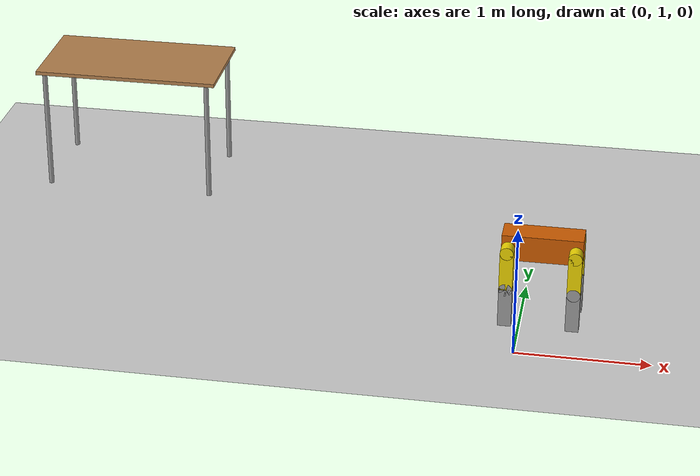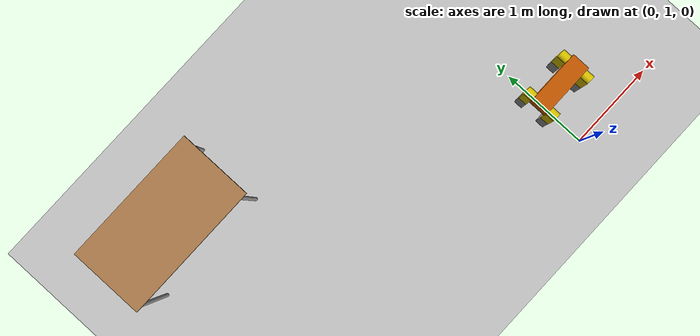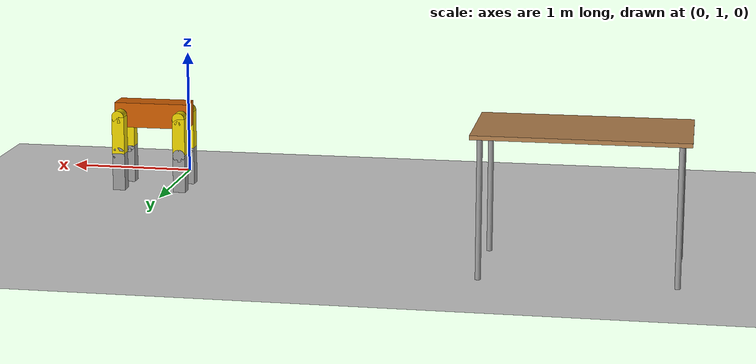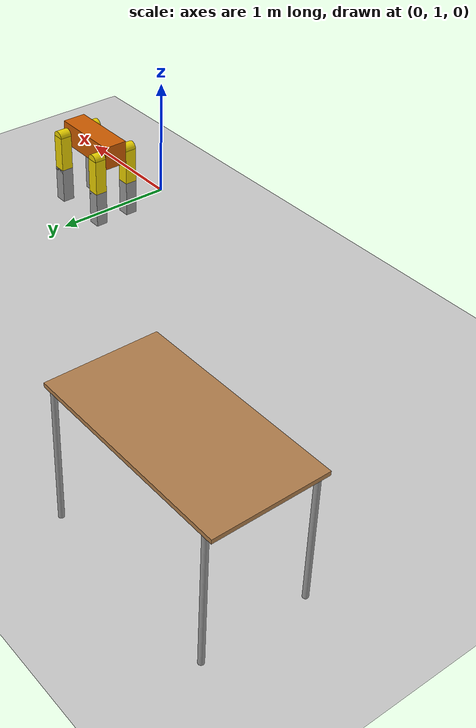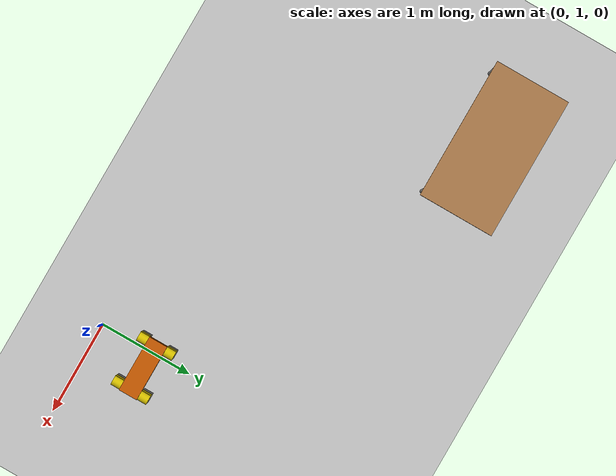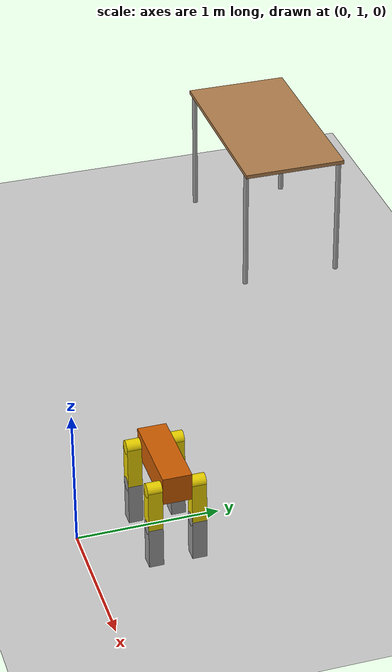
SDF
<sdf version="1.6">
 <world name="default">
  <model name="ground_plane">
   <static>1</static>
   <link name="link">
    <collision name="collision">
     <geometry><plane><normal>0 0 1</normal><size>100 100</size></plane></geometry>
     <surface>
      <contact><collide_bitmask>65535</collide_bitmask></contact>
      <friction><ode><mu>100</mu><mu2>50</mu2></ode></friction>
     </surface>
    </collision>
    <visual name="visual">
     <cast_shadows>0</cast_shadows>
     <geometry><plane><normal>0 0 1</normal><size>100 100</size></plane></geometry>
     <material>
      <script><uri>file://media/materials/scripts/gazebo.material</uri><name>Gazebo/Grey</name></script>
     </material>
    </visual>
   </link>
  </model>
  <model name="dog_robot">
   <link name="link_0">
    <inertial>
     <mass>28.2</mass>
     <inertia><ixx>0.188</ixx><ixy>0</ixy><ixz>0</ixz><iyy>0.94</iyy><iyz>0</iyz><izz>0.94</izz></inertia>
    </inertial>
    <pose>1.24337 -0.641078 0.247843 0 -0 0</pose>
    <visual name="visual">
     <geometry><box><size>0.6 0.2 0.2</size></box></geometry>
     <material>
      <lighting>1</lighting>
      <script><uri>file://media/materials/scripts/gazebo.material</uri><name>Gazebo/Grey</name></script>
      <shader type="pixel"><normal_map>__default__</normal_map></shader>
      <ambient>0.808 0.361 0 1</ambient>
      <diffuse>0.808 0.361 0 1</diffuse>
      <specular>0.808 0.361 0 1</specular>
      <emissive>0 0 0 1</emissive>
     </material>
    </visual>
    <collision name="collision">
     <geometry><box><size>0.6 0.2 0.2</size></box></geometry>
     <surface>
      <friction>
       <ode><mu>1</mu><mu2>1</mu2><fdir1>0 0 0</fdir1><slip1>0</slip1><slip2>0</slip2></ode>
       <torsional>
        <coefficient>1</coefficient>
        <patch_radius>0</patch_radius>
        <surface_radius>0</surface_radius>
        <use_patch_radius>1</use_patch_radius>
        <ode><slip>0</slip></ode>
       </torsional>
      </friction>
      <bounce><restitution_coefficient>0</restitution_coefficient><threshold>1e+06</threshold></bounce>
      <contact>
       <collide_without_contact>0</collide_without_contact>
       <collide_without_contact_bitmask>1</collide_without_contact_bitmask>
       <collide_bitmask>1</collide_bitmask>
       <ode>
        <soft_cfm>0</soft_cfm>
        <soft_erp>0.2</soft_erp>
        <kp>1e+13</kp>
        <kd>1</kd>
        <max_vel>0.01</max_vel>
        <min_depth>0</min_depth>
       </ode>
       <bullet>
        <split_impulse>1</split_impulse>
        <split_impulse_penetration_threshold>-0.01</split_impulse_penetration_threshold>
        <soft_cfm>0</soft_cfm>
        <soft_erp>0.2</soft_erp>
        <kp>1e+13</kp>
        <kd>1</kd>
       </bullet>
      </contact>
     </surface>
    </collision>
   </link>
   <link name="link_1">
    <inertial>
     <mass>0.922843</mass>
     <inertia>
      <ixx>0.00134581</ixx>
      <ixy>0</ixy>
      <ixz>0</ixz>
      <iyy>0.00134581</iyy>
      <iyz>0</iyz>
      <izz>0.00115355</izz>
     </inertia>
    </inertial>
    <pose>1.49337 -0.791078 0.247843 1.5707 -0 0</pose>
    <visual name="visual">
     <geometry><cylinder><radius>0.05</radius><length>0.1</length></cylinder></geometry>
     <material>
      <lighting>1</lighting>
      <script><uri>file://media/materials/scripts/gazebo.material</uri><name>Gazebo/Grey</name></script>
      <shader type="pixel"><normal_map>__default__</normal_map></shader>
      <ambient>0.929 0.831 0 1</ambient>
      <diffuse>0.929 0.831 0 1</diffuse>
      <specular>0.929 0.831 0 1</specular>
      <emissive>0 0 0 1</emissive>
     </material>
    </visual>
    <collision name="collision">
     <geometry><cylinder><radius>0.05</radius><length>0.1</length></cylinder></geometry>
     <surface>
      <friction>
       <ode><mu>1</mu><mu2>1</mu2><fdir1>0 0 0</fdir1><slip1>0</slip1><slip2>0</slip2></ode>
       <torsional>
        <coefficient>1</coefficient>
        <patch_radius>0</patch_radius>
        <surface_radius>0</surface_radius>
        <use_patch_radius>1</use_patch_radius>
        <ode><slip>0</slip></ode>
       </torsional>
      </friction>
      <bounce><restitution_coefficient>0</restitution_coefficient><threshold>1e+06</threshold></bounce>
      <contact>
       <collide_without_contact>0</collide_without_contact>
       <collide_without_contact_bitmask>1</collide_without_contact_bitmask>
       <collide_bitmask>1</collide_bitmask>
       <ode>
        <soft_cfm>0</soft_cfm>
        <soft_erp>0.2</soft_erp>
        <kp>1e+13</kp>
        <kd>1</kd>
        <max_vel>0.01</max_vel>
        <min_depth>0</min_depth>
       </ode>
       <bullet>
        <split_impulse>1</split_impulse>
        <split_impulse_penetration_threshold>-0.01</split_impulse_penetration_threshold>
        <soft_cfm>0</soft_cfm>
        <soft_erp>0.2</soft_erp>
        <kp>1e+13</kp>
        <kd>1</kd>
       </bullet>
      </contact>
     </surface>
    </collision>
   </link>
   <link name="link_1_clone">
    <inertial>
     <mass>0.922843</mass>
     <inertia>
      <ixx>0.00134581</ixx>
      <ixy>0</ixy>
      <ixz>0</ixz>
      <iyy>0.00134581</iyy>
      <iyz>0</iyz>
      <izz>0.00115355</izz>
     </inertia>
    </inertial>
    <pose>0.993372 -0.491078 0.247843 1.5707 -0 0</pose>
    <visual name="visual">
     <geometry><cylinder><radius>0.05</radius><length>0.1</length></cylinder></geometry>
     <material>
      <lighting>1</lighting>
      <script><uri>file://media/materials/scripts/gazebo.material</uri><name>Gazebo/Grey</name></script>
      <shader type="pixel"><normal_map>__default__</normal_map></shader>
      <ambient>0.929 0.831 0 1</ambient>
      <diffuse>0.929 0.831 0 1</diffuse>
      <specular>0.929 0.831 0 1</specular>
      <emissive>0 0 0 1</emissive>
     </material>
    </visual>
    <collision name="collision">
     <geometry><cylinder><radius>0.05</radius><length>0.1</length></cylinder></geometry>
     <surface>
      <friction>
       <ode><mu>1</mu><mu2>1</mu2><fdir1>0 0 0</fdir1><slip1>0</slip1><slip2>0</slip2></ode>
       <torsional>
        <coefficient>1</coefficient>
        <patch_radius>0</patch_radius>
        <surface_radius>0</surface_radius>
        <use_patch_radius>1</use_patch_radius>
        <ode><slip>0</slip></ode>
       </torsional>
      </friction>
      <bounce><restitution_coefficient>0</restitution_coefficient><threshold>1e+06</threshold></bounce>
      <contact>
       <collide_without_contact>0</collide_without_contact>
       <collide_without_contact_bitmask>1</collide_without_contact_bitmask>
       <collide_bitmask>1</collide_bitmask>
       <ode>
        <soft_cfm>0</soft_cfm>
        <soft_erp>0.2</soft_erp>
        <kp>1e+13</kp>
        <kd>1</kd>
        <max_vel>0.01</max_vel>
        <min_depth>0</min_depth>
       </ode>
       <bullet>
        <split_impulse>1</split_impulse>
        <split_impulse_penetration_threshold>-0.01</split_impulse_penetration_threshold>
        <soft_cfm>0</soft_cfm>
        <soft_erp>0.2</soft_erp>
        <kp>1e+13</kp>
        <kd>1</kd>
       </bullet>
      </contact>
     </surface>
    </collision>
   </link>
   <link name="link_1_clone_0">
    <inertial>
     <mass>0.922843</mass>
     <inertia>
      <ixx>0.00134581</ixx>
      <ixy>0</ixy>
      <ixz>0</ixz>
      <iyy>0.00134581</iyy>
      <iyz>0</iyz>
      <izz>0.00115355</izz>
     </inertia>
    </inertial>
    <pose>0.993372 -0.791078 0.247843 1.5707 -0 0</pose>
    <visual name="visual">
     <geometry><cylinder><radius>0.05</radius><length>0.1</length></cylinder></geometry>
     <material>
      <lighting>1</lighting>
      <script><uri>file://media/materials/scripts/gazebo.material</uri><name>Gazebo/Grey</name></script>
      <shader type="pixel"><normal_map>__default__</normal_map></shader>
      <ambient>0.929 0.831 0 1</ambient>
      <diffuse>0.929 0.831 0 1</diffuse>
      <specular>0.929 0.831 0 1</specular>
      <emissive>0 0 0 1</emissive>
     </material>
    </visual>
    <collision name="collision">
     <geometry><cylinder><radius>0.05</radius><length>0.1</length></cylinder></geometry>
     <surface>
      <friction>
       <ode><mu>1</mu><mu2>1</mu2><fdir1>0 0 0</fdir1><slip1>0</slip1><slip2>0</slip2></ode>
       <torsional>
        <coefficient>1</coefficient>
        <patch_radius>0</patch_radius>
        <surface_radius>0</surface_radius>
        <use_patch_radius>1</use_patch_radius>
        <ode><slip>0</slip></ode>
       </torsional>
      </friction>
      <bounce><restitution_coefficient>0</restitution_coefficient><threshold>1e+06</threshold></bounce>
      <contact>
       <collide_without_contact>0</collide_without_contact>
       <collide_without_contact_bitmask>1</collide_without_contact_bitmask>
       <collide_bitmask>1</collide_bitmask>
       <ode>
        <soft_cfm>0</soft_cfm>
        <soft_erp>0.2</soft_erp>
        <kp>1e+13</kp>
        <kd>1</kd>
        <max_vel>0.01</max_vel>
        <min_depth>0</min_depth>
       </ode>
       <bullet>
        <split_impulse>1</split_impulse>
        <split_impulse_penetration_threshold>-0.01</split_impulse_penetration_threshold>
        <soft_cfm>0</soft_cfm>
        <soft_erp>0.2</soft_erp>
        <kp>1e+13</kp>
        <kd>1</kd>
       </bullet>
      </contact>
     </surface>
    </collision>
   </link>
   <link name="link_1_clone_1">
    <inertial>
     <mass>0.922843</mass>
     <inertia>
      <ixx>0.00134581</ixx>
      <ixy>0</ixy>
      <ixz>0</ixz>
      <iyy>0.00134581</iyy>
      <iyz>0</iyz>
      <izz>0.00115355</izz>
     </inertia>
    </inertial>
    <pose>1.49337 -0.491078 0.247843 1.5707 -0 0</pose>
    <visual name="visual">
     <geometry><cylinder><radius>0.05</radius><length>0.1</length></cylinder></geometry>
     <material>
      <lighting>1</lighting>
      <script><uri>file://media/materials/scripts/gazebo.material</uri><name>Gazebo/Grey</name></script>
      <shader type="pixel"><normal_map>__default__</normal_map></shader>
      <ambient>0.929 0.831 0 1</ambient>
      <diffuse>0.929 0.831 0 1</diffuse>
      <specular>0.929 0.831 0 1</specular>
      <emissive>0 0 0 1</emissive>
     </material>
    </visual>
    <collision name="collision">
     <geometry><cylinder><radius>0.05</radius><length>0.1</length></cylinder></geometry>
     <surface>
      <friction>
       <ode><mu>1</mu><mu2>1</mu2><fdir1>0 0 0</fdir1><slip1>0</slip1><slip2>0</slip2></ode>
       <torsional>
        <coefficient>1</coefficient>
        <patch_radius>0</patch_radius>
        <surface_radius>0</surface_radius>
        <use_patch_radius>1</use_patch_radius>
        <ode><slip>0</slip></ode>
       </torsional>
      </friction>
      <bounce><restitution_coefficient>0</restitution_coefficient><threshold>1e+06</threshold></bounce>
      <contact>
       <collide_without_contact>0</collide_without_contact>
       <collide_without_contact_bitmask>1</collide_without_contact_bitmask>
       <collide_bitmask>1</collide_bitmask>
       <ode>
        <soft_cfm>0</soft_cfm>
        <soft_erp>0.2</soft_erp>
        <kp>1e+13</kp>
        <kd>1</kd>
        <max_vel>0.01</max_vel>
        <min_depth>0</min_depth>
       </ode>
       <bullet>
        <split_impulse>1</split_impulse>
        <split_impulse_penetration_threshold>-0.01</split_impulse_penetration_threshold>
        <soft_cfm>0</soft_cfm>
        <soft_erp>0.2</soft_erp>
        <kp>1e+13</kp>
        <kd>1</kd>
       </bullet>
      </contact>
     </surface>
    </collision>
   </link>
   <link name="link_2">
    <inertial>
     <mass>3.525</mass>
     <inertia>
      <ixx>0.029375</ixx>
      <ixy>0</ixy>
      <ixz>0</ixz>
      <iyy>0.005875</iyy>
      <iyz>0</iyz>
      <izz>0.029375</izz>
     </inertia>
    </inertial>
    <pose>1.49337 -0.791092 0.097844 1.5707 -0 0</pose>
    <visual name="visual">
     <geometry><box><size>0.1 0.3 0.1</size></box></geometry>
     <material>
      <lighting>1</lighting>
      <script><uri>file://media/materials/scripts/gazebo.material</uri><name>Gazebo/Grey</name></script>
      <shader type="pixel"><normal_map>__default__</normal_map></shader>
      <ambient>0.929 0.831 0 1</ambient>
      <diffuse>0.929 0.831 0 1</diffuse>
      <specular>0.929 0.831 0 1</specular>
      <emissive>0 0 0 1</emissive>
     </material>
    </visual>
    <collision name="collision">
     <geometry><box><size>0.1 0.3 0.1</size></box></geometry>
     <surface>
      <friction>
       <ode><mu>1</mu><mu2>1</mu2><fdir1>0 0 0</fdir1><slip1>0</slip1><slip2>0</slip2></ode>
       <torsional>
        <coefficient>1</coefficient>
        <patch_radius>0</patch_radius>
        <surface_radius>0</surface_radius>
        <use_patch_radius>1</use_patch_radius>
        <ode><slip>0</slip></ode>
       </torsional>
      </friction>
      <bounce><restitution_coefficient>0</restitution_coefficient><threshold>1e+06</threshold></bounce>
      <contact>
       <collide_without_contact>0</collide_without_contact>
       <collide_without_contact_bitmask>1</collide_without_contact_bitmask>
       <collide_bitmask>1</collide_bitmask>
       <ode>
        <soft_cfm>0</soft_cfm>
        <soft_erp>0.2</soft_erp>
        <kp>1e+13</kp>
        <kd>1</kd>
        <max_vel>0.01</max_vel>
        <min_depth>0</min_depth>
       </ode>
       <bullet>
        <split_impulse>1</split_impulse>
        <split_impulse_penetration_threshold>-0.01</split_impulse_penetration_threshold>
        <soft_cfm>0</soft_cfm>
        <soft_erp>0.2</soft_erp>
        <kp>1e+13</kp>
        <kd>1</kd>
       </bullet>
      </contact>
     </surface>
    </collision>
   </link>
   <link name="link_2_clone">
    <inertial>
     <mass>3.525</mass>
     <inertia>
      <ixx>0.029375</ixx>
      <ixy>0</ixy>
      <ixz>0</ixz>
      <iyy>0.005875</iyy>
      <iyz>0</iyz>
      <izz>0.029375</izz>
     </inertia>
    </inertial>
    <pose>0.993372 -0.491092 0.097844 1.5707 -0 0</pose>
    <visual name="visual">
     <geometry><box><size>0.1 0.3 0.1</size></box></geometry>
     <material>
      <lighting>1</lighting>
      <script><uri>file://media/materials/scripts/gazebo.material</uri><name>Gazebo/Grey</name></script>
      <shader type="pixel"><normal_map>__default__</normal_map></shader>
      <ambient>0.929 0.831 0 1</ambient>
      <diffuse>0.929 0.831 0 1</diffuse>
      <specular>0.929 0.831 0 1</specular>
      <emissive>0 0 0 1</emissive>
     </material>
    </visual>
    <collision name="collision">
     <geometry><box><size>0.1 0.3 0.1</size></box></geometry>
     <surface>
      <friction>
       <ode><mu>1</mu><mu2>1</mu2><fdir1>0 0 0</fdir1><slip1>0</slip1><slip2>0</slip2></ode>
       <torsional>
        <coefficient>1</coefficient>
        <patch_radius>0</patch_radius>
        <surface_radius>0</surface_radius>
        <use_patch_radius>1</use_patch_radius>
        <ode><slip>0</slip></ode>
       </torsional>
      </friction>
      <bounce><restitution_coefficient>0</restitution_coefficient><threshold>1e+06</threshold></bounce>
      <contact>
       <collide_without_contact>0</collide_without_contact>
       <collide_without_contact_bitmask>1</collide_without_contact_bitmask>
       <collide_bitmask>1</collide_bitmask>
       <ode>
        <soft_cfm>0</soft_cfm>
        <soft_erp>0.2</soft_erp>
        <kp>1e+13</kp>
        <kd>1</kd>
        <max_vel>0.01</max_vel>
        <min_depth>0</min_depth>
       </ode>
       <bullet>
        <split_impulse>1</split_impulse>
        <split_impulse_penetration_threshold>-0.01</split_impulse_penetration_threshold>
        <soft_cfm>0</soft_cfm>
        <soft_erp>0.2</soft_erp>
        <kp>1e+13</kp>
        <kd>1</kd>
       </bullet>
      </contact>
     </surface>
    </collision>
   </link>
   <link name="link_2_clone_0">
    <inertial>
     <mass>3.525</mass>
     <inertia>
      <ixx>0.029375</ixx>
      <ixy>0</ixy>
      <ixz>0</ixz>
      <iyy>0.005875</iyy>
      <iyz>0</iyz>
      <izz>0.029375</izz>
     </inertia>
    </inertial>
    <pose>1.49337 -0.491092 0.097844 1.5707 -0 0</pose>
    <visual name="visual">
     <geometry><box><size>0.1 0.3 0.1</size></box></geometry>
     <material>
      <lighting>1</lighting>
      <script><uri>file://media/materials/scripts/gazebo.material</uri><name>Gazebo/Grey</name></script>
      <shader type="pixel"><normal_map>__default__</normal_map></shader>
      <ambient>0.929 0.831 0 1</ambient>
      <diffuse>0.929 0.831 0 1</diffuse>
      <specular>0.929 0.831 0 1</specular>
      <emissive>0 0 0 1</emissive>
     </material>
    </visual>
    <collision name="collision">
     <geometry><box><size>0.1 0.3 0.1</size></box></geometry>
     <surface>
      <friction>
       <ode><mu>1</mu><mu2>1</mu2><fdir1>0 0 0</fdir1><slip1>0</slip1><slip2>0</slip2></ode>
       <torsional>
        <coefficient>1</coefficient>
        <patch_radius>0</patch_radius>
        <surface_radius>0</surface_radius>
        <use_patch_radius>1</use_patch_radius>
        <ode><slip>0</slip></ode>
       </torsional>
      </friction>
      <bounce><restitution_coefficient>0</restitution_coefficient><threshold>1e+06</threshold></bounce>
      <contact>
       <collide_without_contact>0</collide_without_contact>
       <collide_without_contact_bitmask>1</collide_without_contact_bitmask>
       <collide_bitmask>1</collide_bitmask>
       <ode>
        <soft_cfm>0</soft_cfm>
        <soft_erp>0.2</soft_erp>
        <kp>1e+13</kp>
        <kd>1</kd>
        <max_vel>0.01</max_vel>
        <min_depth>0</min_depth>
       </ode>
       <bullet>
        <split_impulse>1</split_impulse>
        <split_impulse_penetration_threshold>-0.01</split_impulse_penetration_threshold>
        <soft_cfm>0</soft_cfm>
        <soft_erp>0.2</soft_erp>
        <kp>1e+13</kp>
        <kd>1</kd>
       </bullet>
      </contact>
     </surface>
    </collision>
   </link>
   <link name="link_2_clone_1">
    <inertial>
     <mass>3.525</mass>
     <inertia>
      <ixx>0.029375</ixx>
      <ixy>0</ixy>
      <ixz>0</ixz>
      <iyy>0.005875</iyy>
      <iyz>0</iyz>
      <izz>0.029375</izz>
     </inertia>
    </inertial>
    <pose>0.993372 -0.791092 0.097844 1.5707 -0 0</pose>
    <visual name="visual">
     <geometry><box><size>0.1 0.3 0.1</size></box></geometry>
     <material>
      <lighting>1</lighting>
      <script><uri>file://media/materials/scripts/gazebo.material</uri><name>Gazebo/Grey</name></script>
      <shader type="pixel"><normal_map>__default__</normal_map></shader>
      <ambient>0.929 0.831 0 1</ambient>
      <diffuse>0.929 0.831 0 1</diffuse>
      <specular>0.929 0.831 0 1</specular>
      <emissive>0 0 0 1</emissive>
     </material>
    </visual>
    <collision name="collision">
     <geometry><box><size>0.1 0.3 0.1</size></box></geometry>
     <surface>
      <friction>
       <ode><mu>1</mu><mu2>1</mu2><fdir1>0 0 0</fdir1><slip1>0</slip1><slip2>0</slip2></ode>
       <torsional>
        <coefficient>1</coefficient>
        <patch_radius>0</patch_radius>
        <surface_radius>0</surface_radius>
        <use_patch_radius>1</use_patch_radius>
        <ode><slip>0</slip></ode>
       </torsional>
      </friction>
      <bounce><restitution_coefficient>0</restitution_coefficient><threshold>1e+06</threshold></bounce>
      <contact>
       <collide_without_contact>0</collide_without_contact>
       <collide_without_contact_bitmask>1</collide_without_contact_bitmask>
       <collide_bitmask>1</collide_bitmask>
       <ode>
        <soft_cfm>0</soft_cfm>
        <soft_erp>0.2</soft_erp>
        <kp>1e+13</kp>
        <kd>1</kd>
        <max_vel>0.01</max_vel>
        <min_depth>0</min_depth>
       </ode>
       <bullet>
        <split_impulse>1</split_impulse>
        <split_impulse_penetration_threshold>-0.01</split_impulse_penetration_threshold>
        <soft_cfm>0</soft_cfm>
        <soft_erp>0.2</soft_erp>
        <kp>1e+13</kp>
        <kd>1</kd>
       </bullet>
      </contact>
     </surface>
    </collision>
   </link>
   <link name="link_2_clone_2">
    <inertial>
     <mass>3.525</mass>
     <inertia>
      <ixx>0.029375</ixx>
      <ixy>0</ixy>
      <ixz>0</ixz>
      <iyy>0.005875</iyy>
      <iyz>0</iyz>
      <izz>0.029375</izz>
     </inertia>
    </inertial>
    <pose>1.49337 -0.791121 -0.202156 1.5707 -0 0</pose>
    <visual name="visual">
     <geometry><box><size>0.1 0.3 0.1</size></box></geometry>
     <material>
      <lighting>1</lighting>
      <script><uri>file://media/materials/scripts/gazebo.material</uri><name>Gazebo/Grey</name></script>
      <shader type="pixel"><normal_map>__default__</normal_map></shader>
      <ambient>0.3 0.3 0.3 1</ambient>
      <diffuse>0.7 0.7 0.7 1</diffuse>
      <specular>0.01 0.01 0.01 1</specular>
      <emissive>0 0 0 1</emissive>
     </material>
    </visual>
    <collision name="collision">
     <geometry><box><size>0.1 0.3 0.1</size></box></geometry>
     <surface>
      <friction>
       <ode><mu>1</mu><mu2>1</mu2><fdir1>0 0 0</fdir1><slip1>0</slip1><slip2>0</slip2></ode>
       <torsional>
        <coefficient>1</coefficient>
        <patch_radius>0</patch_radius>
        <surface_radius>0</surface_radius>
        <use_patch_radius>1</use_patch_radius>
        <ode><slip>0</slip></ode>
       </torsional>
      </friction>
      <bounce><restitution_coefficient>0</restitution_coefficient><threshold>1e+06</threshold></bounce>
      <contact>
       <collide_without_contact>0</collide_without_contact>
       <collide_without_contact_bitmask>1</collide_without_contact_bitmask>
       <collide_bitmask>1</collide_bitmask>
       <ode>
        <soft_cfm>0</soft_cfm>
        <soft_erp>0.2</soft_erp>
        <kp>1e+13</kp>
        <kd>1</kd>
        <max_vel>0.01</max_vel>
        <min_depth>0</min_depth>
       </ode>
       <bullet>
        <split_impulse>1</split_impulse>
        <split_impulse_penetration_threshold>-0.01</split_impulse_penetration_threshold>
        <soft_cfm>0</soft_cfm>
        <soft_erp>0.2</soft_erp>
        <kp>1e+13</kp>
        <kd>1</kd>
       </bullet>
      </contact>
     </surface>
    </collision>
   </link>
   <link name="link_2_clone_3">
    <inertial>
     <mass>3.525</mass>
     <inertia>
      <ixx>0.029375</ixx>
      <ixy>0</ixy>
      <ixz>0</ixz>
      <iyy>0.005875</iyy>
      <iyz>0</iyz>
      <izz>0.029375</izz>
     </inertia>
    </inertial>
    <pose>0.993372 -0.491121 -0.202156 1.5707 -0 0</pose>
    <visual name="visual">
     <geometry><box><size>0.1 0.3 0.1</size></box></geometry>
     <material>
      <lighting>1</lighting>
      <script><uri>file://media/materials/scripts/gazebo.material</uri><name>Gazebo/Grey</name></script>
      <shader type="pixel"><normal_map>__default__</normal_map></shader>
      <ambient>0.3 0.3 0.3 1</ambient>
      <diffuse>0.7 0.7 0.7 1</diffuse>
      <specular>0.01 0.01 0.01 1</specular>
      <emissive>0 0 0 1</emissive>
     </material>
    </visual>
    <collision name="collision">
     <geometry><box><size>0.1 0.3 0.1</size></box></geometry>
     <surface>
      <friction>
       <ode><mu>1</mu><mu2>1</mu2><fdir1>0 0 0</fdir1><slip1>0</slip1><slip2>0</slip2></ode>
       <torsional>
        <coefficient>1</coefficient>
        <patch_radius>0</patch_radius>
        <surface_radius>0</surface_radius>
        <use_patch_radius>1</use_patch_radius>
        <ode><slip>0</slip></ode>
       </torsional>
      </friction>
      <bounce><restitution_coefficient>0</restitution_coefficient><threshold>1e+06</threshold></bounce>
      <contact>
       <collide_without_contact>0</collide_without_contact>
       <collide_without_contact_bitmask>1</collide_without_contact_bitmask>
       <collide_bitmask>1</collide_bitmask>
       <ode>
        <soft_cfm>0</soft_cfm>
        <soft_erp>0.2</soft_erp>
        <kp>1e+13</kp>
        <kd>1</kd>
        <max_vel>0.01</max_vel>
        <min_depth>0</min_depth>
       </ode>
       <bullet>
        <split_impulse>1</split_impulse>
        <split_impulse_penetration_threshold>-0.01</split_impulse_penetration_threshold>
        <soft_cfm>0</soft_cfm>
        <soft_erp>0.2</soft_erp>
        <kp>1e+13</kp>
        <kd>1</kd>
       </bullet>
      </contact>
     </surface>
    </collision>
   </link>
   <link name="link_2_clone_4">
    <inertial>
     <mass>3.525</mass>
     <inertia>
      <ixx>0.029375</ixx>
      <ixy>0</ixy>
      <ixz>0</ixz>
      <iyy>0.005875</iyy>
      <iyz>0</iyz>
      <izz>0.029375</izz>
     </inertia>
    </inertial>
    <pose>1.49337 -0.491121 -0.202156 1.5707 -0 0</pose>
    <visual name="visual">
     <geometry><box><size>0.1 0.3 0.1</size></box></geometry>
     <material>
      <lighting>1</lighting>
      <script><uri>file://media/materials/scripts/gazebo.material</uri><name>Gazebo/Grey</name></script>
      <shader type="pixel"><normal_map>__default__</normal_map></shader>
      <ambient>0.3 0.3 0.3 1</ambient>
      <diffuse>0.7 0.7 0.7 1</diffuse>
      <specular>0.01 0.01 0.01 1</specular>
      <emissive>0 0 0 1</emissive>
     </material>
    </visual>
    <collision name="collision">
     <geometry><box><size>0.1 0.3 0.1</size></box></geometry>
     <surface>
      <friction>
       <ode><mu>1</mu><mu2>1</mu2><fdir1>0 0 0</fdir1><slip1>0</slip1><slip2>0</slip2></ode>
       <torsional>
        <coefficient>1</coefficient>
        <patch_radius>0</patch_radius>
        <surface_radius>0</surface_radius>
        <use_patch_radius>1</use_patch_radius>
        <ode><slip>0</slip></ode>
       </torsional>
      </friction>
      <bounce><restitution_coefficient>0</restitution_coefficient><threshold>1e+06</threshold></bounce>
      <contact>
       <collide_without_contact>0</collide_without_contact>
       <collide_without_contact_bitmask>1</collide_without_contact_bitmask>
       <collide_bitmask>1</collide_bitmask>
       <ode>
        <soft_cfm>0</soft_cfm>
        <soft_erp>0.2</soft_erp>
        <kp>1e+13</kp>
        <kd>1</kd>
        <max_vel>0.01</max_vel>
        <min_depth>0</min_depth>
       </ode>
       <bullet>
        <split_impulse>1</split_impulse>
        <split_impulse_penetration_threshold>-0.01</split_impulse_penetration_threshold>
        <soft_cfm>0</soft_cfm>
        <soft_erp>0.2</soft_erp>
        <kp>1e+13</kp>
        <kd>1</kd>
       </bullet>
      </contact>
     </surface>
    </collision>
   </link>
   <link name="link_2_clone_5">
    <inertial>
     <mass>3.525</mass>
     <inertia>
      <ixx>0.029375</ixx>
      <ixy>0</ixy>
      <ixz>0</ixz>
      <iyy>0.005875</iyy>
      <iyz>0</iyz>
      <izz>0.029375</izz>
     </inertia>
    </inertial>
    <pose>0.993372 -0.791121 -0.202156 1.5707 -0 0</pose>
    <visual name="visual">
     <geometry><box><size>0.1 0.3 0.1</size></box></geometry>
     <material>
      <lighting>1</lighting>
      <script><uri>file://media/materials/scripts/gazebo.material</uri><name>Gazebo/Grey</name></script>
      <shader type="pixel"><normal_map>__default__</normal_map></shader>
      <ambient>0.3 0.3 0.3 1</ambient>
      <diffuse>0.7 0.7 0.7 1</diffuse>
      <specular>0.01 0.01 0.01 1</specular>
      <emissive>0 0 0 1</emissive>
     </material>
    </visual>
    <collision name="collision">
     <geometry><box><size>0.1 0.3 0.1</size></box></geometry>
     <surface>
      <friction>
       <ode><mu>1</mu><mu2>1</mu2><fdir1>0 0 0</fdir1><slip1>0</slip1><slip2>0</slip2></ode>
       <torsional>
        <coefficient>1</coefficient>
        <patch_radius>0</patch_radius>
        <surface_radius>0</surface_radius>
        <use_patch_radius>1</use_patch_radius>
        <ode><slip>0</slip></ode>
       </torsional>
      </friction>
      <bounce><restitution_coefficient>0</restitution_coefficient><threshold>1e+06</threshold></bounce>
      <contact>
       <collide_without_contact>0</collide_without_contact>
       <collide_without_contact_bitmask>1</collide_without_contact_bitmask>
       <collide_bitmask>1</collide_bitmask>
       <ode>
        <soft_cfm>0</soft_cfm>
        <soft_erp>0.2</soft_erp>
        <kp>1e+13</kp>
        <kd>1</kd>
        <max_vel>0.01</max_vel>
        <min_depth>0</min_depth>
       </ode>
       <bullet>
        <split_impulse>1</split_impulse>
        <split_impulse_penetration_threshold>-0.01</split_impulse_penetration_threshold>
        <soft_cfm>0</soft_cfm>
        <soft_erp>0.2</soft_erp>
        <kp>1e+13</kp>
        <kd>1</kd>
       </bullet>
      </contact>
     </surface>
    </collision>
   </link>
   <link name="link_3">
    <inertial>
     <mass>0.922843</mass>
     <inertia>
      <ixx>0.00134581</ixx>
      <ixy>0</ixy>
      <ixz>0</ixz>
      <iyy>0.00134581</iyy>
      <iyz>0</iyz>
      <izz>0.00115355</izz>
     </inertia>
    </inertial>
    <pose>1.49337 -0.791107 -0.052156 1.5707 -0 0</pose>
    <visual name="visual">
     <geometry><cylinder><radius>0.05</radius><length>0.1</length></cylinder></geometry>
     <material>
      <lighting>1</lighting>
      <script><uri>file://media/materials/scripts/gazebo.material</uri><name>Gazebo/Grey</name></script>
      <shader type="pixel"><normal_map>__default__</normal_map></shader>
      <ambient>0.3 0.3 0.3 1</ambient>
      <diffuse>0.7 0.7 0.7 1</diffuse>
      <specular>0.01 0.01 0.01 1</specular>
      <emissive>0 0 0 1</emissive>
     </material>
    </visual>
    <collision name="collision">
     <geometry><cylinder><radius>0.05</radius><length>0.1</length></cylinder></geometry>
     <surface>
      <friction>
       <ode><mu>1</mu><mu2>1</mu2><fdir1>0 0 0</fdir1><slip1>0</slip1><slip2>0</slip2></ode>
       <torsional>
        <coefficient>1</coefficient>
        <patch_radius>0</patch_radius>
        <surface_radius>0</surface_radius>
        <use_patch_radius>1</use_patch_radius>
        <ode><slip>0</slip></ode>
       </torsional>
      </friction>
      <bounce><restitution_coefficient>0</restitution_coefficient><threshold>1e+06</threshold></bounce>
      <contact>
       <collide_without_contact>0</collide_without_contact>
       <collide_without_contact_bitmask>1</collide_without_contact_bitmask>
       <collide_bitmask>1</collide_bitmask>
       <ode>
        <soft_cfm>0</soft_cfm>
        <soft_erp>0.2</soft_erp>
        <kp>1e+13</kp>
        <kd>1</kd>
        <max_vel>0.01</max_vel>
        <min_depth>0</min_depth>
       </ode>
       <bullet>
        <split_impulse>1</split_impulse>
        <split_impulse_penetration_threshold>-0.01</split_impulse_penetration_threshold>
        <soft_cfm>0</soft_cfm>
        <soft_erp>0.2</soft_erp>
        <kp>1e+13</kp>
        <kd>1</kd>
       </bullet>
      </contact>
     </surface>
    </collision>
   </link>
   <link name="link_3_clone">
    <inertial>
     <mass>0.922843</mass>
     <inertia>
      <ixx>0.00134581</ixx>
      <ixy>0</ixy>
      <ixz>0</ixz>
      <iyy>0.00134581</iyy>
      <iyz>0</iyz>
      <izz>0.00115355</izz>
     </inertia>
    </inertial>
    <pose>0.993372 -0.491107 -0.052156 1.5707 -0 0</pose>
    <visual name="visual">
     <geometry><cylinder><radius>0.05</radius><length>0.1</length></cylinder></geometry>
     <material>
      <lighting>1</lighting>
      <script><uri>file://media/materials/scripts/gazebo.material</uri><name>Gazebo/Grey</name></script>
      <shader type="pixel"><normal_map>__default__</normal_map></shader>
      <ambient>0.3 0.3 0.3 1</ambient>
      <diffuse>0.7 0.7 0.7 1</diffuse>
      <specular>0.01 0.01 0.01 1</specular>
      <emissive>0 0 0 1</emissive>
     </material>
    </visual>
    <collision name="collision">
     <geometry><cylinder><radius>0.05</radius><length>0.1</length></cylinder></geometry>
     <surface>
      <friction>
       <ode><mu>1</mu><mu2>1</mu2><fdir1>0 0 0</fdir1><slip1>0</slip1><slip2>0</slip2></ode>
       <torsional>
        <coefficient>1</coefficient>
        <patch_radius>0</patch_radius>
        <surface_radius>0</surface_radius>
        <use_patch_radius>1</use_patch_radius>
        <ode><slip>0</slip></ode>
       </torsional>
      </friction>
      <bounce><restitution_coefficient>0</restitution_coefficient><threshold>1e+06</threshold></bounce>
      <contact>
       <collide_without_contact>0</collide_without_contact>
       <collide_without_contact_bitmask>1</collide_without_contact_bitmask>
       <collide_bitmask>1</collide_bitmask>
       <ode>
        <soft_cfm>0</soft_cfm>
        <soft_erp>0.2</soft_erp>
        <kp>1e+13</kp>
        <kd>1</kd>
        <max_vel>0.01</max_vel>
        <min_depth>0</min_depth>
       </ode>
       <bullet>
        <split_impulse>1</split_impulse>
        <split_impulse_penetration_threshold>-0.01</split_impulse_penetration_threshold>
        <soft_cfm>0</soft_cfm>
        <soft_erp>0.2</soft_erp>
        <kp>1e+13</kp>
        <kd>1</kd>
       </bullet>
      </contact>
     </surface>
    </collision>
   </link>
   <link name="link_3_clone_0">
    <inertial>
     <mass>0.922843</mass>
     <inertia>
      <ixx>0.00134581</ixx>
      <ixy>0</ixy>
      <ixz>0</ixz>
      <iyy>0.00134581</iyy>
      <iyz>0</iyz>
      <izz>0.00115355</izz>
     </inertia>
    </inertial>
    <pose>1.49337 -0.491107 -0.052156 1.5707 -0 0</pose>
    <visual name="visual">
     <geometry><cylinder><radius>0.05</radius><length>0.1</length></cylinder></geometry>
     <material>
      <lighting>1</lighting>
      <script><uri>file://media/materials/scripts/gazebo.material</uri><name>Gazebo/Grey</name></script>
      <shader type="pixel"><normal_map>__default__</normal_map></shader>
      <ambient>0.3 0.3 0.3 1</ambient>
      <diffuse>0.7 0.7 0.7 1</diffuse>
      <specular>0.01 0.01 0.01 1</specular>
      <emissive>0 0 0 1</emissive>
     </material>
    </visual>
    <collision name="collision">
     <geometry><cylinder><radius>0.05</radius><length>0.1</length></cylinder></geometry>
     <surface>
      <friction>
       <ode><mu>1</mu><mu2>1</mu2><fdir1>0 0 0</fdir1><slip1>0</slip1><slip2>0</slip2></ode>
       <torsional>
        <coefficient>1</coefficient>
        <patch_radius>0</patch_radius>
        <surface_radius>0</surface_radius>
        <use_patch_radius>1</use_patch_radius>
        <ode><slip>0</slip></ode>
       </torsional>
      </friction>
      <bounce><restitution_coefficient>0</restitution_coefficient><threshold>1e+06</threshold></bounce>
      <contact>
       <collide_without_contact>0</collide_without_contact>
       <collide_without_contact_bitmask>1</collide_without_contact_bitmask>
       <collide_bitmask>1</collide_bitmask>
       <ode>
        <soft_cfm>0</soft_cfm>
        <soft_erp>0.2</soft_erp>
        <kp>1e+13</kp>
        <kd>1</kd>
        <max_vel>0.01</max_vel>
        <min_depth>0</min_depth>
       </ode>
       <bullet>
        <split_impulse>1</split_impulse>
        <split_impulse_penetration_threshold>-0.01</split_impulse_penetration_threshold>
        <soft_cfm>0</soft_cfm>
        <soft_erp>0.2</soft_erp>
        <kp>1e+13</kp>
        <kd>1</kd>
       </bullet>
      </contact>
     </surface>
    </collision>
   </link>
   <link name="link_3_clone_1">
    <inertial>
     <mass>0.922843</mass>
     <inertia>
      <ixx>0.00134581</ixx>
      <ixy>0</ixy>
      <ixz>0</ixz>
      <iyy>0.00134581</iyy>
      <iyz>0</iyz>
      <izz>0.00115355</izz>
     </inertia>
    </inertial>
    <pose>0.993372 -0.791107 -0.052156 1.5707 -0 0</pose>
    <visual name="visual">
     <geometry><cylinder><radius>0.05</radius><length>0.1</length></cylinder></geometry>
     <material>
      <lighting>1</lighting>
      <script><uri>file://media/materials/scripts/gazebo.material</uri><name>Gazebo/Grey</name></script>
      <shader type="pixel"><normal_map>__default__</normal_map></shader>
      <ambient>0.3 0.3 0.3 1</ambient>
      <diffuse>0.7 0.7 0.7 1</diffuse>
      <specular>0.01 0.01 0.01 1</specular>
      <emissive>0 0 0 1</emissive>
     </material>
    </visual>
    <collision name="collision">
     <geometry><cylinder><radius>0.05</radius><length>0.1</length></cylinder></geometry>
     <surface>
      <friction>
       <ode><mu>1</mu><mu2>1</mu2><fdir1>0 0 0</fdir1><slip1>0</slip1><slip2>0</slip2></ode>
       <torsional>
        <coefficient>1</coefficient>
        <patch_radius>0</patch_radius>
        <surface_radius>0</surface_radius>
        <use_patch_radius>1</use_patch_radius>
        <ode><slip>0</slip></ode>
       </torsional>
      </friction>
      <bounce><restitution_coefficient>0</restitution_coefficient><threshold>1e+06</threshold></bounce>
      <contact>
       <collide_without_contact>0</collide_without_contact>
       <collide_without_contact_bitmask>1</collide_without_contact_bitmask>
       <collide_bitmask>1</collide_bitmask>
       <ode>
        <soft_cfm>0</soft_cfm>
        <soft_erp>0.2</soft_erp>
        <kp>1e+13</kp>
        <kd>1</kd>
        <max_vel>0.01</max_vel>
        <min_depth>0</min_depth>
       </ode>
       <bullet>
        <split_impulse>1</split_impulse>
        <split_impulse_penetration_threshold>-0.01</split_impulse_penetration_threshold>
        <soft_cfm>0</soft_cfm>
        <soft_erp>0.2</soft_erp>
        <kp>1e+13</kp>
        <kd>1</kd>
       </bullet>
      </contact>
     </surface>
    </collision>
   </link>
   <joint name="link_0_JOINT_0" type="revolute">
    <parent>link_0</parent>
    <child>link_1</child>
    <axis>
     <xyz>0 0 1</xyz>
     <limit>
      <lower>-1.79769e+308</lower>
      <upper>1.79769e+308</upper>
      <effort>-1</effort>
      <velocity>-1</velocity>
     </limit>
     <dynamics>
      <spring_reference>0</spring_reference>
      <spring_stiffness>0</spring_stiffness>
      <damping>0</damping>
      <friction>0</friction>
     </dynamics>
     <use_parent_model_frame>0</use_parent_model_frame>
    </axis>
    <physics>
     <ode><limit><cfm>0</cfm><erp>0.2</erp></limit><suspension><cfm>0</cfm><erp>0.2</erp></suspension></ode>
    </physics>
   </joint>
   <joint name="link_0_JOINT_1" type="revolute">
    <parent>link_0</parent>
    <child>link_1_clone_1</child>
    <axis>
     <xyz>0 0 1</xyz>
     <limit>
      <lower>-1.79769e+308</lower>
      <upper>1.79769e+308</upper>
      <effort>-1</effort>
      <velocity>-1</velocity>
     </limit>
     <dynamics>
      <spring_reference>0</spring_reference>
      <spring_stiffness>0</spring_stiffness>
      <damping>0</damping>
      <friction>0</friction>
     </dynamics>
     <use_parent_model_frame>0</use_parent_model_frame>
    </axis>
    <physics>
     <ode><limit><cfm>0</cfm><erp>0.2</erp></limit><suspension><cfm>0</cfm><erp>0.2</erp></suspension></ode>
    </physics>
   </joint>
   <joint name="link_0_JOINT_2" type="revolute">
    <parent>link_0</parent>
    <child>link_1_clone_0</child>
    <axis>
     <xyz>0 0 1</xyz>
     <limit>
      <lower>-1.79769e+308</lower>
      <upper>1.79769e+308</upper>
      <effort>-1</effort>
      <velocity>-1</velocity>
     </limit>
     <dynamics>
      <spring_reference>0</spring_reference>
      <spring_stiffness>0</spring_stiffness>
      <damping>0</damping>
      <friction>0</friction>
     </dynamics>
     <use_parent_model_frame>0</use_parent_model_frame>
    </axis>
    <physics>
     <ode><limit><cfm>0</cfm><erp>0.2</erp></limit><suspension><cfm>0</cfm><erp>0.2</erp></suspension></ode>
    </physics>
   </joint>
   <joint name="link_0_JOINT_3" type="revolute">
    <parent>link_0</parent>
    <child>link_1_clone</child>
    <axis>
     <xyz>0 0 1</xyz>
     <limit>
      <lower>-1.79769e+308</lower>
      <upper>1.79769e+308</upper>
      <effort>-1</effort>
      <velocity>-1</velocity>
     </limit>
     <dynamics>
      <spring_reference>0</spring_reference>
      <spring_stiffness>0</spring_stiffness>
      <damping>0</damping>
      <friction>0</friction>
     </dynamics>
     <use_parent_model_frame>0</use_parent_model_frame>
    </axis>
    <physics>
     <ode><limit><cfm>0</cfm><erp>0.2</erp></limit><suspension><cfm>0</cfm><erp>0.2</erp></suspension></ode>
    </physics>
   </joint>
   <joint name="link_1_JOINT_4" type="fixed">
    <parent>link_1</parent>
    <child>link_2</child>
    <physics>
     <ode><limit><cfm>0</cfm><erp>0.2</erp></limit><suspension><cfm>0</cfm><erp>0.2</erp></suspension></ode>
    </physics>
   </joint>
   <joint name="link_1_clone_0_JOINT_6" type="fixed">
    <parent>link_1_clone_0</parent>
    <child>link_2_clone_1</child>
    <physics>
     <ode><limit><cfm>0</cfm><erp>0.2</erp></limit><suspension><cfm>0</cfm><erp>0.2</erp></suspension></ode>
    </physics>
   </joint>
   <joint name="link_1_clone_1_JOINT_7" type="fixed">
    <parent>link_1_clone_1</parent>
    <child>link_2_clone_0</child>
    <physics>
     <ode><limit><cfm>0</cfm><erp>0.2</erp></limit><suspension><cfm>0</cfm><erp>0.2</erp></suspension></ode>
    </physics>
   </joint>
   <joint name="link_1_clone_JOINT_5" type="fixed">
    <parent>link_1_clone</parent>
    <child>link_2_clone</child>
    <physics>
     <ode><limit><cfm>0</cfm><erp>0.2</erp></limit><suspension><cfm>0</cfm><erp>0.2</erp></suspension></ode>
    </physics>
   </joint>
   <joint name="link_2_JOINT_8" type="revolute">
    <parent>link_2</parent>
    <child>link_3</child>
    <axis>
     <xyz>0 0 1</xyz>
     <limit>
      <lower>-1.79769e+308</lower>
      <upper>1.79769e+308</upper>
      <effort>-1</effort>
      <velocity>-1</velocity>
     </limit>
     <dynamics>
      <spring_reference>0</spring_reference>
      <spring_stiffness>0</spring_stiffness>
      <damping>0</damping>
      <friction>0</friction>
     </dynamics>
     <use_parent_model_frame>0</use_parent_model_frame>
    </axis>
    <physics>
     <ode><limit><cfm>0</cfm><erp>0.2</erp></limit><suspension><cfm>0</cfm><erp>0.2</erp></suspension></ode>
    </physics>
   </joint>
   <joint name="link_2_clone_0_JOINT_10" type="revolute">
    <parent>link_2_clone_0</parent>
    <child>link_3_clone_0</child>
    <axis>
     <xyz>0 0 1</xyz>
     <limit>
      <lower>-1.79769e+308</lower>
      <upper>1.79769e+308</upper>
      <effort>-1</effort>
      <velocity>-1</velocity>
     </limit>
     <dynamics>
      <spring_reference>0</spring_reference>
      <spring_stiffness>0</spring_stiffness>
      <damping>0</damping>
      <friction>0</friction>
     </dynamics>
     <use_parent_model_frame>0</use_parent_model_frame>
    </axis>
    <physics>
     <ode><limit><cfm>0</cfm><erp>0.2</erp></limit><suspension><cfm>0</cfm><erp>0.2</erp></suspension></ode>
    </physics>
   </joint>
   <joint name="link_2_clone_1_JOINT_11" type="revolute">
    <parent>link_2_clone_1</parent>
    <child>link_3_clone_1</child>
    <axis>
     <xyz>0 0 1</xyz>
     <limit>
      <lower>-1.79769e+308</lower>
      <upper>1.79769e+308</upper>
      <effort>-1</effort>
      <velocity>-1</velocity>
     </limit>
     <dynamics>
      <spring_reference>0</spring_reference>
      <spring_stiffness>0</spring_stiffness>
      <damping>0</damping>
      <friction>0</friction>
     </dynamics>
     <use_parent_model_frame>0</use_parent_model_frame>
    </axis>
    <physics>
     <ode><limit><cfm>0</cfm><erp>0.2</erp></limit><suspension><cfm>0</cfm><erp>0.2</erp></suspension></ode>
    </physics>
   </joint>
   <joint name="link_2_clone_JOINT_9" type="revolute">
    <parent>link_2_clone</parent>
    <child>link_3_clone</child>
    <axis>
     <xyz>0 0 1</xyz>
     <limit>
      <lower>-1.79769e+308</lower>
      <upper>1.79769e+308</upper>
      <effort>-1</effort>
      <velocity>-1</velocity>
     </limit>
     <dynamics>
      <spring_reference>0</spring_reference>
      <spring_stiffness>0</spring_stiffness>
      <damping>0</damping>
      <friction>0</friction>
     </dynamics>
     <use_parent_model_frame>0</use_parent_model_frame>
    </axis>
    <physics>
     <ode><limit><cfm>0</cfm><erp>0.2</erp></limit><suspension><cfm>0</cfm><erp>0.2</erp></suspension></ode>
    </physics>
   </joint>
   <joint name="link_3_JOINT_12" type="fixed">
    <parent>link_3</parent>
    <child>link_2_clone_2</child>
    <physics>
     <ode><limit><cfm>0</cfm><erp>0.2</erp></limit><suspension><cfm>0</cfm><erp>0.2</erp></suspension></ode>
    </physics>
   </joint>
   <joint name="link_3_clone_0_JOINT_14" type="fixed">
    <parent>link_3_clone_0</parent>
    <child>link_2_clone_4</child>
    <physics>
     <ode><limit><cfm>0</cfm><erp>0.2</erp></limit><suspension><cfm>0</cfm><erp>0.2</erp></suspension></ode>
    </physics>
   </joint>
   <joint name="link_3_clone_1_JOINT_15" type="fixed">
    <parent>link_3_clone_1</parent>
    <child>link_2_clone_5</child>
    <physics>
     <ode><limit><cfm>0</cfm><erp>0.2</erp></limit><suspension><cfm>0</cfm><erp>0.2</erp></suspension></ode>
    </physics>
   </joint>
   <joint name="link_3_clone_JOINT_13" type="fixed">
    <parent>link_3_clone</parent>
    <child>link_2_clone_3</child>
    <physics>
     <ode><limit><cfm>0</cfm><erp>0.2</erp></limit><suspension><cfm>0</cfm><erp>0.2</erp></suspension></ode>
    </physics>
   </joint>
   <static>0</static>
   <pose>-1.10095 2.22354 0.35 0 -0 0</pose>
  </model>
  <model name="table_0">
   <static>1</static>
   <link name="link">
    <collision name="surface">
     <pose>0 0 1 0 -0 0</pose>
     <geometry><box><size>1.5 0.8 0.03</size></box></geometry>
     <surface><friction><ode><mu>0.6</mu><mu2>0.6</mu2></ode></friction></surface>
    </collision>
    <visual name="visual1">
     <pose>0 0 1 0 -0 0</pose>
     <geometry><box><size>1.5 0.8 0.03</size></box></geometry>
     <material>
      <script><uri>file://media/materials/scripts/gazebo.material</uri><name>Gazebo/Wood</name></script>
     </material>
    </visual>
    <collision name="front_left_leg">
     <pose>0.68 0.38 0.5 0 -0 0</pose>
     <geometry><cylinder><radius>0.02</radius><length>1</length></cylinder></geometry>
    </collision>
    <visual name="front_left_leg">
     <pose>0.68 0.38 0.5 0 -0 0</pose>
     <geometry><cylinder><radius>0.02</radius><length>1</length></cylinder></geometry>
     <material>
      <script><uri>file://media/materials/scripts/gazebo.material</uri><name>Gazebo/Grey</name></script>
     </material>
    </visual>
    <collision name="front_right_leg">
     <pose>0.68 -0.38 0.5 0 -0 0</pose>
     <geometry><cylinder><radius>0.02</radius><length>1</length></cylinder></geometry>
    </collision>
    <visual name="front_right_leg">
     <pose>0.68 -0.38 0.5 0 -0 0</pose>
     <geometry><cylinder><radius>0.02</radius><length>1</length></cylinder></geometry>
     <material>
      <script><uri>file://media/materials/scripts/gazebo.material</uri><name>Gazebo/Grey</name></script>
     </material>
    </visual>
    <collision name="back_right_leg">
     <pose>-0.68 -0.38 0.5 0 -0 0</pose>
     <geometry><cylinder><radius>0.02</radius><length>1</length></cylinder></geometry>
    </collision>
    <visual name="back_right_leg">
     <pose>-0.68 -0.38 0.5 0 -0 0</pose>
     <geometry><cylinder><radius>0.02</radius><length>1</length></cylinder></geometry>
     <material>
      <script><uri>file://media/materials/scripts/gazebo.material</uri><name>Gazebo/Grey</name></script>
     </material>
    </visual>
    <collision name="back_left_leg">
     <pose>-0.68 0.38 0.5 0 -0 0</pose>
     <geometry><cylinder><radius>0.02</radius><length>1</length></cylinder></geometry>
    </collision>
    <visual name="back_left_leg">
     <pose>-0.68 0.38 0.5 0 -0 0</pose>
     <geometry><cylinder><radius>0.02</radius><length>1</length></cylinder></geometry>
     <material>
      <script><uri>file://media/materials/scripts/gazebo.material</uri><name>Gazebo/Grey</name></script>
     </material>
    </visual>
   </link>
   <pose>-3.43355 3.47319 0 0 -0 0</pose>
  </model>
 </world>
</sdf>
